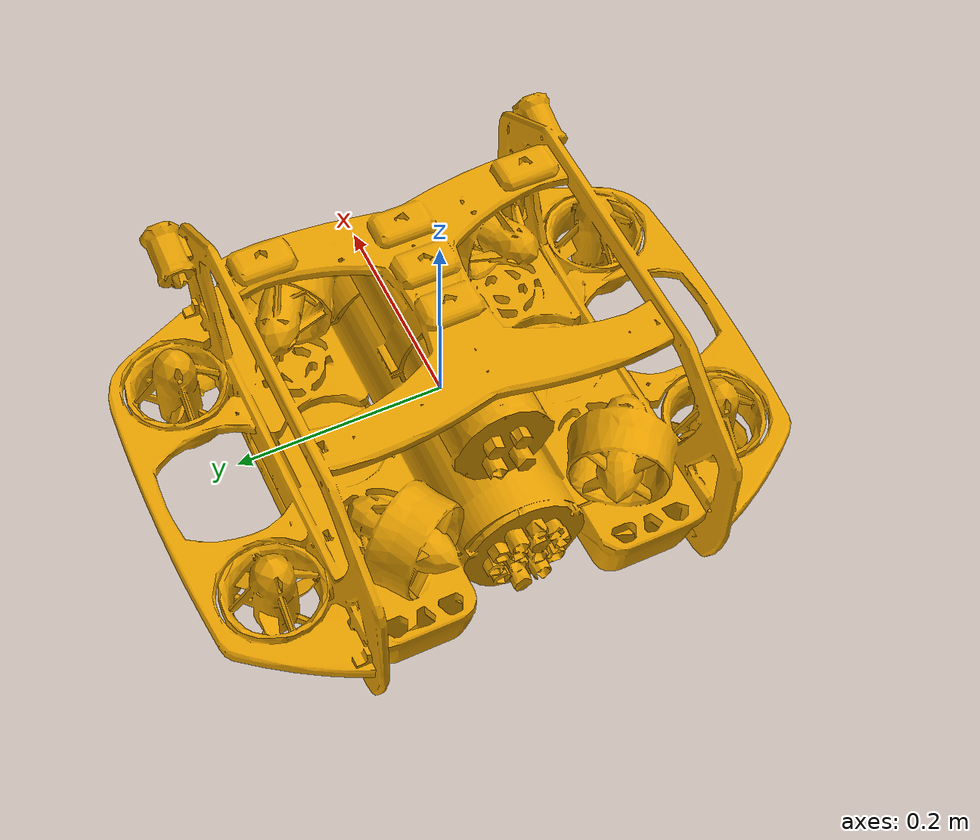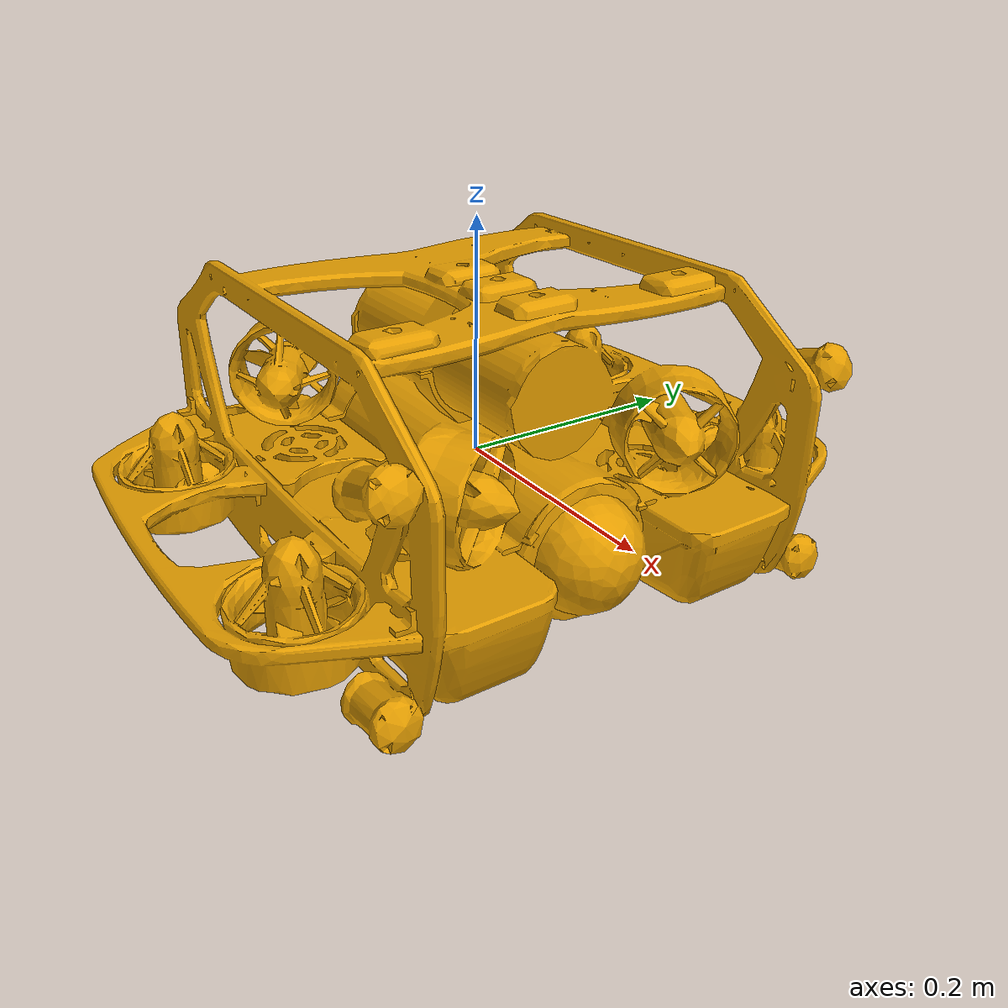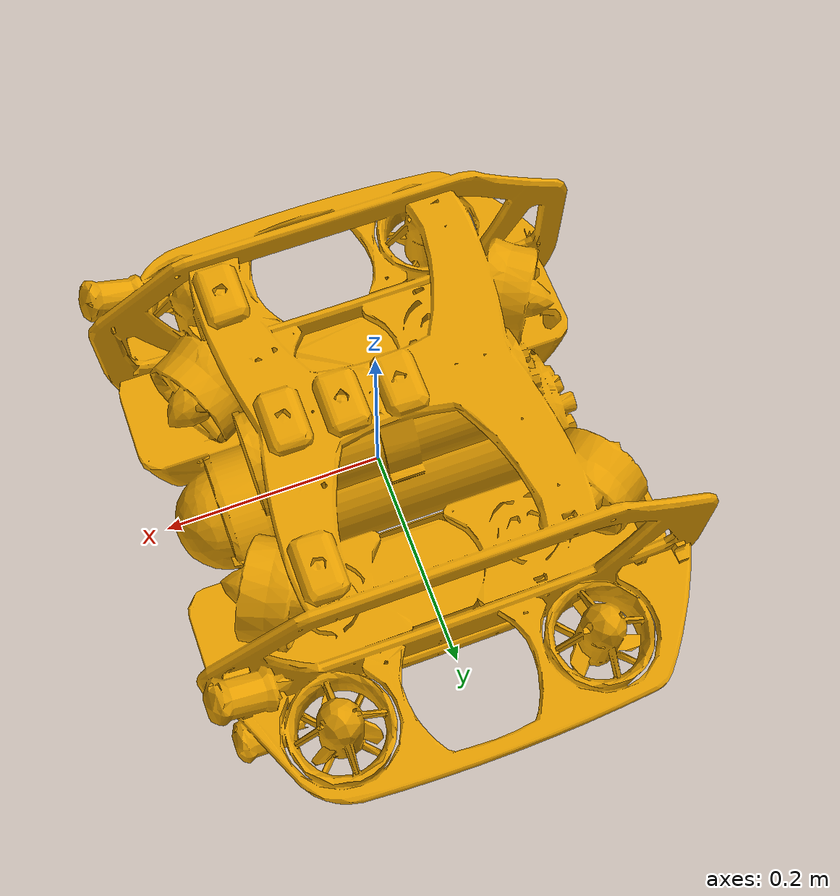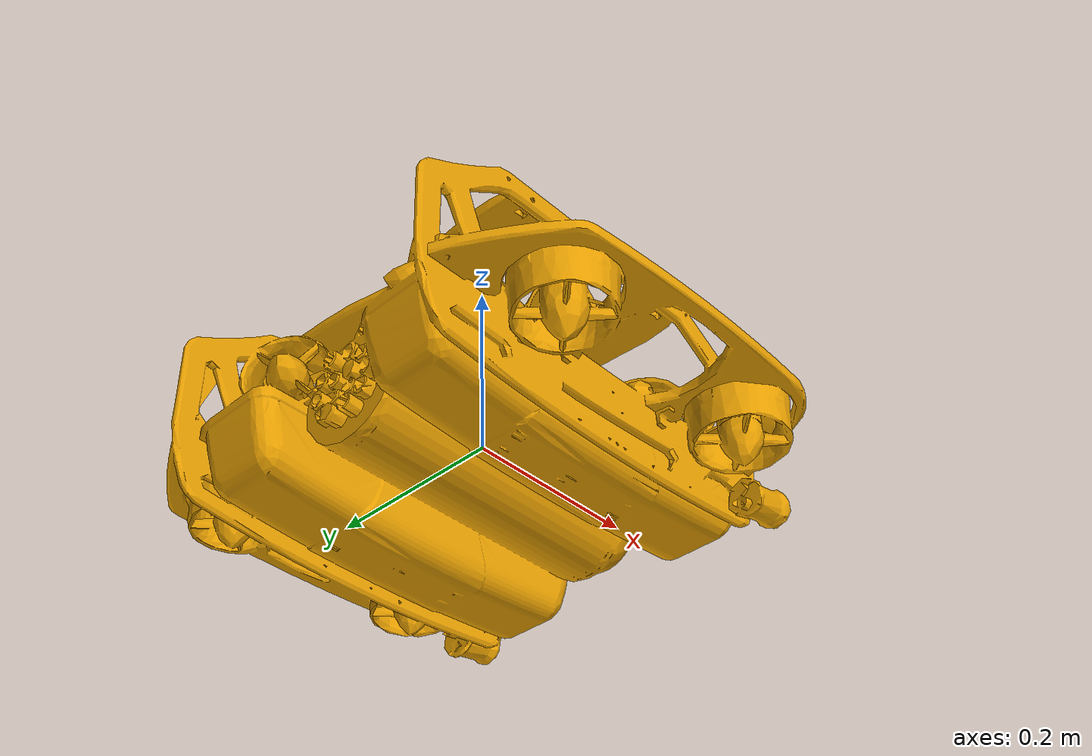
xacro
<?xml version="1.0"?>

<robot name="brov2heavy" xmlns:xacro="http://www.ros.org/wiki/xacro" >
  <xacro:arg name="debug" default="0"/>
  <xacro:arg name="robot_name" default="brov2heavy"/>
  <xacro:include filename="$(find brov2heavy_description)/urdf/brov2heavy.urdf.xacro"/>
  <xacro:brov2heavy robot_name="$(arg robot_name)" debug="$(arg debug)"/>
</robot>

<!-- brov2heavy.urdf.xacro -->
<robot name="brov2heavy" xmlns:xacro="http://www.ros.org/wiki/xacro">

  <xacro:property name="PI" value="3.141592" />
  <xacro:property name="body" value="file://$(find brov2heavy_description)/mesh/brov2heavy.dae"/>

  <xacro:macro name="brov2heavy" params="robot_name debug">

  <!-- Links. -->
  <link name="$(arg robot_name)/base_link">
    <visual>
      <origin xyz="0. 0. 0." rpy="${pi} 0. 0."/>
      <geometry>
        <mesh filename="${body}" scale="1 1 1"/>
      </geometry>
    </visual>
  </link>

  </xacro:macro>

</robot>
